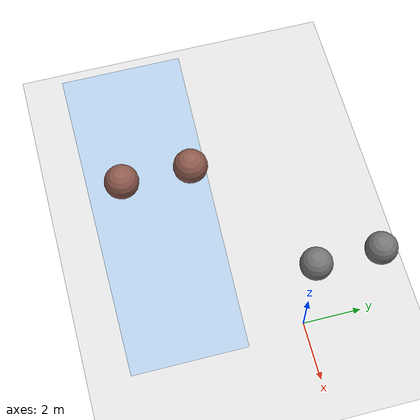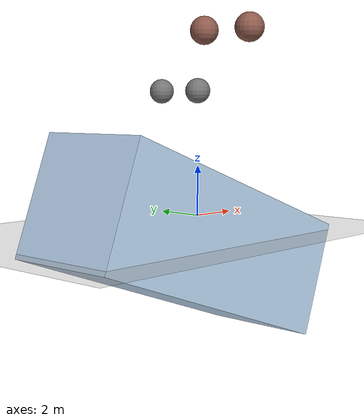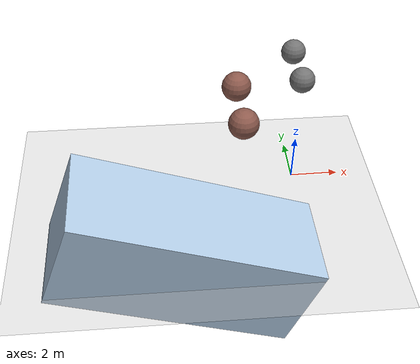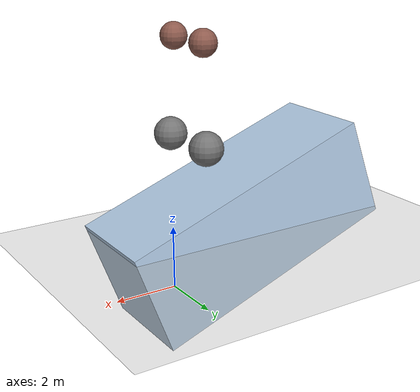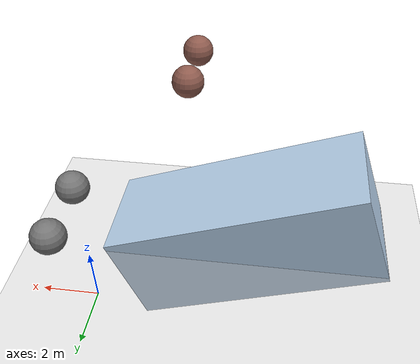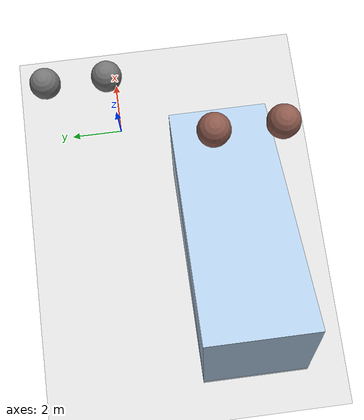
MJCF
<mujoco>
  <include file="./common/materials.xml"/>
  <option timestep="0.02" iterations="4" solver="PGS"/>
  <asset>
    <texture name="tex_0" type="2d" builtin="checker" width="128" height="128" rgb1="0.3 0.4 0.5" rgb2="0.6 0.5 0.4"/>
    <material name="mat_0" texture="tex_0" texrepeat="5 5" texuniform="true"/>

    <texture name="tex_1" type="2d" builtin="checker" width="128" height="128" rgb1="0.5 0.2 0.2" rgb2="0.6 0.5 0.4"/>
    <material name="mat_1" texture="tex_1" texrepeat="5 5" texuniform="true"/>
  </asset>

  <worldbody>
    <light name="light" pos="0 0 3" directional = "true"/>
    <geom type="plane" size="25 25 .1"  rgba = "0.7 0.7 0.7 1" material="motphys-ground"/>
    <body pos="0 0 5">
      <freejoint name = "ball_A"/>
      <geom priority="1" type="sphere" size="0.5" condim = "4" friction = "0 0.02 0" material = "mat_0"/>
      <inertial pos="0 0 0"  mass="10"
      diaginertia="1 1 1"/>
    </body>

    <body pos="0 2 5">
      <freejoint name = "ball_B"/>
      <geom priority="1" type="sphere" size="0.5" condim = "4" friction = "0 0.005 0" material = "mat_0"/>
      <inertial pos="0 0 0"  mass="10"
      diaginertia="1 1 1"/>
    </body>

    <body pos="-3 -3 7">
      <freejoint name = "ball_C"/>
      <geom priority="1" type="sphere" size="0.5" condim = "6" friction = "0.08 0 0.2" material = "mat_1"/>
      <inertial pos="0 0 0"  mass="10"
      diaginertia="1 1 1"/>
    </body>

    <body pos="-3 -5 7">
      <freejoint name = "ball_D"/>
      <geom priority="1" type="sphere" size="0.5" condim = "6" friction = "0.08 0 0.1" material = "mat_1"/>
      <inertial pos="0 0 0"  mass="10"
      diaginertia="1 1 1"/>
    </body>

    <geom priority="1" type="box" size="5 2 2" pos = "-5 -4 0" quat = "0 0.174 0 0.985" rgba = "0.7 0.8 0.9 1"/>

  </worldbody>
    <asset>
      <texture type="skybox" builtin="gradient" rgb1=".4 .5 .6" rgb2="0 0 0"
        width="100" height="100"/>
    </asset>

    <actuator>
      <motor name="actuator_A" joint="ball_A" gear="0 0 0 0 0 5"/>
      <motor name="actuator_B" joint="ball_B" gear="0 0 0 0 0 5"/>
    </actuator>
</mujoco>

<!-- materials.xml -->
<!--
Common textures, colors and materials to be used throughout this suite. Some
materials such as xxx_highlight are activated on occurence of certain events,
for example receiving a positive reward.
-->
<mujoco>
  <asset>
    <texture name="motphys-ground" type="2d" file="motphys-ground.png" />
    <material name="motphys-ground" texture="motphys-ground" texuniform="true"
      texrepeat="0.4 0.4" />
  </asset>
</mujoco>
